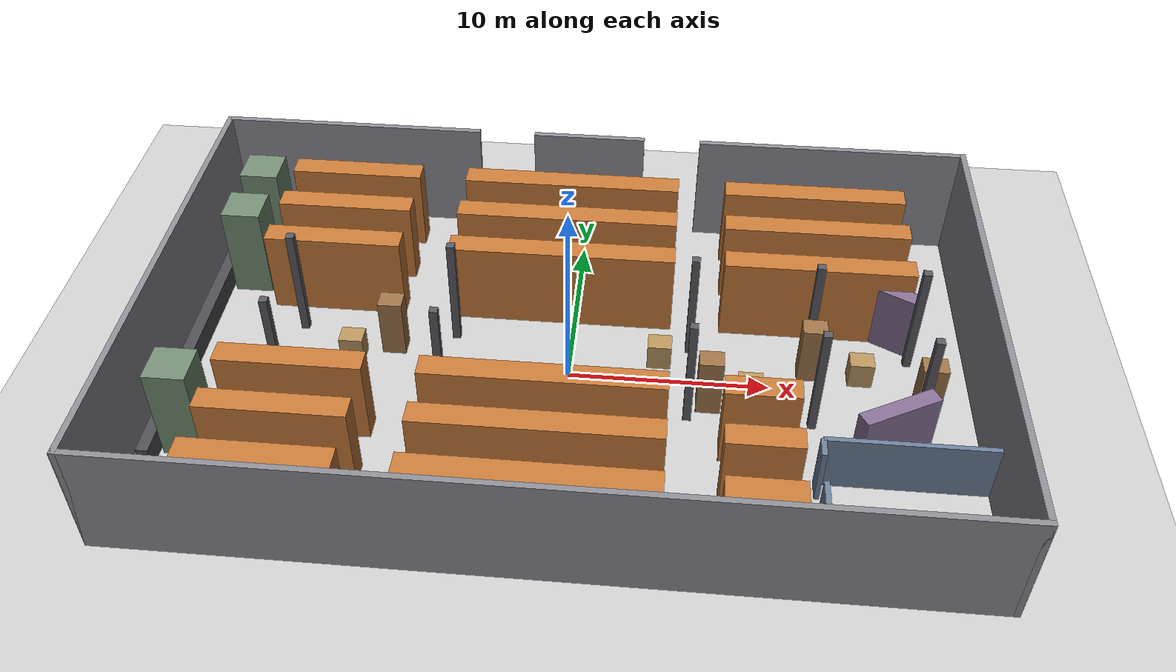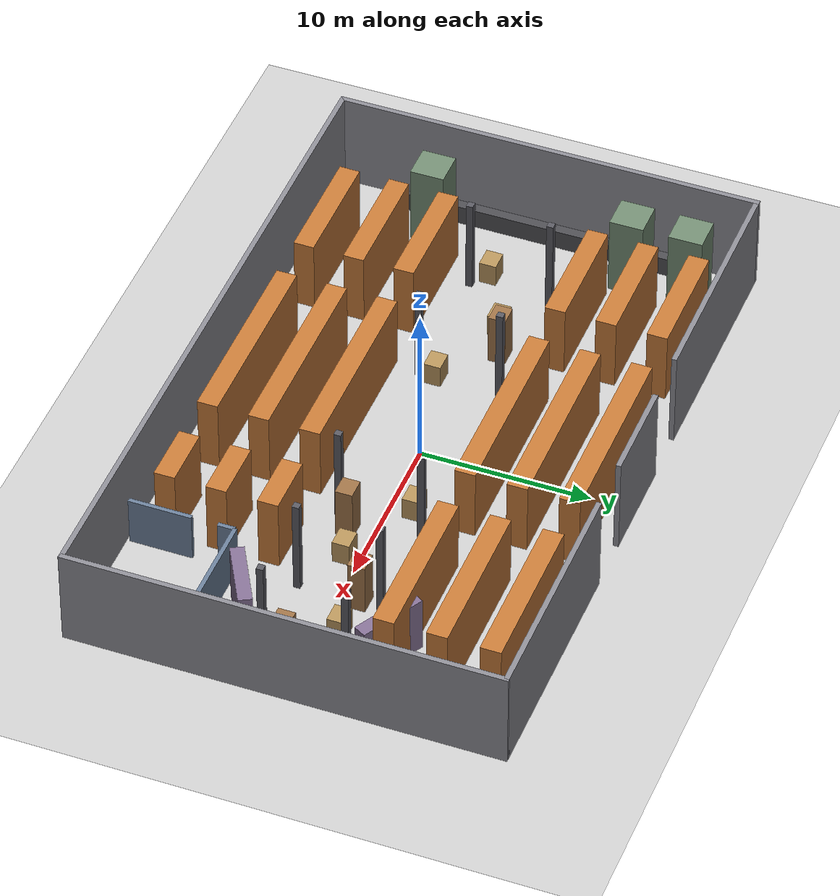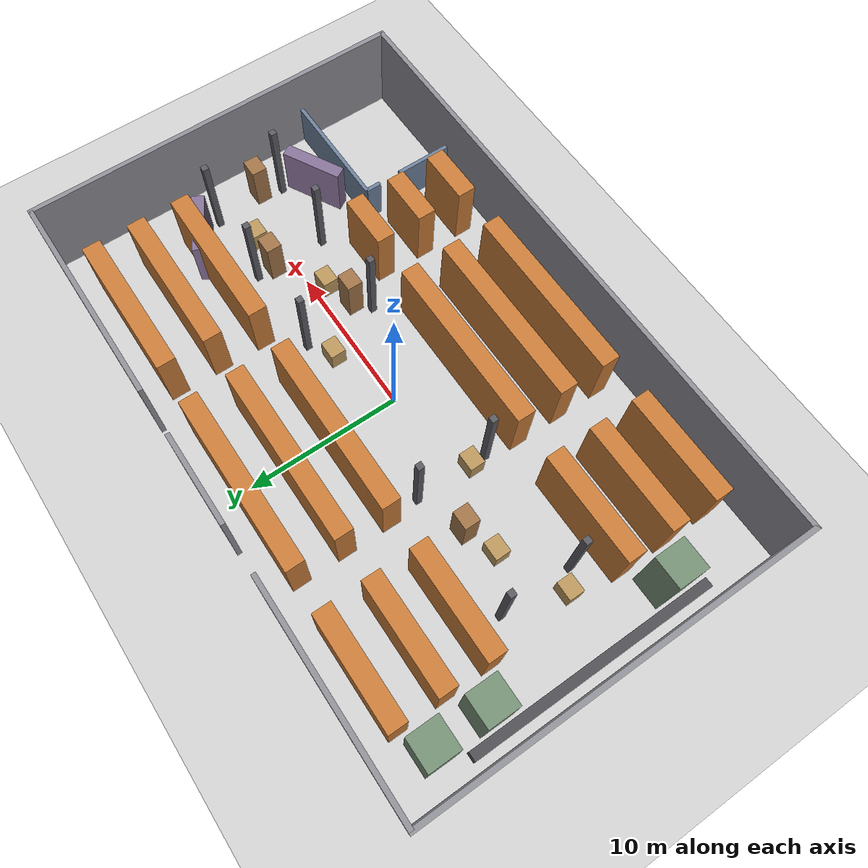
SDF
<?xml version="1.0" encoding="UTF-8"?>
<sdf version="1.9">
  <world name="garudanex_warehouse">
    <physics type="ode">
      <max_step_size>0.004</max_step_size>
      <real_time_factor>1.0</real_time_factor>
      <real_time_update_rate>250</real_time_update_rate>
    </physics>
    <gravity>0 0 -9.8</gravity>
    <magnetic_field>6e-06 2.3e-05 -4.2e-05</magnetic_field>
    <atmosphere type="adiabatic"/>
    <scene>
      <grid>false</grid>
      <ambient>0.4 0.4 0.4 1</ambient>
      <background>0.7 0.7 0.7 1</background>
      <shadows>true</shadows>
    </scene>
    <model name="ground_plane">
      <static>true</static>
      <link name="link">
        <collision name="collision">
          <geometry>
            <plane>
              <normal>0 0 1</normal>
              <size>1 1</size>
            </plane>
          </geometry>
          <surface>
            <friction>
              <ode/>
            </friction>
            <bounce/>
            <contact/>
          </surface>
        </collision>
        <visual name="visual">
          <geometry>
            <plane>
              <normal>0 0 1</normal>
              <size>500 500</size>
            </plane>
          </geometry>
          <material>
            <ambient>0.8 0.8 0.8 1</ambient>
            <diffuse>0.8 0.8 0.8 1</diffuse>
            <specular>0.8 0.8 0.8 1</specular>
          </material>
        </visual>
        <pose>0 0 0 0 -0 0</pose>
        <inertial>
          <pose>0 0 0 0 -0 0</pose>
          <mass>1</mass>
          <inertia>
            <ixx>1</ixx>
            <ixy>0</ixy>
            <ixz>0</ixz>
            <iyy>1</iyy>
            <iyz>0</iyz>
            <izz>1</izz>
          </inertia>
        </inertial>
        <enable_wind>false</enable_wind>
      </link>
      <pose>0 0 0 0 -0 0</pose>
      <self_collide>false</self_collide>
    </model>
    <light name="sunUTC" type="directional">
      <pose>0 0 500 0 -0 0</pose>
      <cast_shadows>true</cast_shadows>
      <intensity>1</intensity>
      <direction>0.001 0.625 -0.78</direction>
      <diffuse>0.904 0.904 0.904 1</diffuse>
      <specular>0.271 0.271 0.271 1</specular>
      <attenuation>
        <range>2000</range>
        <linear>0</linear>
        <constant>1</constant>
        <quadratic>0</quadratic>
      </attenuation>
      <spot>
        <inner_angle>0</inner_angle>
        <outer_angle>0</outer_angle>
        <falloff>0</falloff>
      </spot>
    </light>
    <spherical_coordinates>
      <surface_model>EARTH_WGS84</surface_model>
      <world_frame_orientation>ENU</world_frame_orientation>
      <latitude_deg>47.397971057728974</latitude_deg>
      <longitude_deg> 8.546163739800146</longitude_deg>
      <elevation>0</elevation>
    </spherical_coordinates>

    <model name="shell">
    <static>true</static>
    <link name="wall_south">
      <pose>0.0000 -12.5000 3.0000 0 0 0.0000</pose>
      <collision name="collision">
        <geometry><box><size>40.3000 0.3000 6.0000</size></box></geometry>
      </collision>
      <visual name="visual">
        <geometry><box><size>40.3000 0.3000 6.0000</size></box></geometry>
        <material>
          <ambient>0.55 0.55 0.58 1</ambient>
          <diffuse>0.55 0.55 0.58 1</diffuse>
        </material>
      </visual>
    </link>
    <link name="wall_east">
      <pose>20.0000 0.0000 3.0000 0 0 0.0000</pose>
      <collision name="collision">
        <geometry><box><size>0.3000 25.3000 6.0000</size></box></geometry>
      </collision>
      <visual name="visual">
        <geometry><box><size>0.3000 25.3000 6.0000</size></box></geometry>
        <material>
          <ambient>0.55 0.55 0.58 1</ambient>
          <diffuse>0.55 0.55 0.58 1</diffuse>
        </material>
      </visual>
    </link>
    <link name="wall_west">
      <pose>-20.0000 0.0000 3.0000 0 0 0.0000</pose>
      <collision name="collision">
        <geometry><box><size>0.3000 25.3000 6.0000</size></box></geometry>
      </collision>
      <visual name="visual">
        <geometry><box><size>0.3000 25.3000 6.0000</size></box></geometry>
        <material>
          <ambient>0.55 0.55 0.58 1</ambient>
          <diffuse>0.55 0.55 0.58 1</diffuse>
        </material>
      </visual>
    </link>
    <link name="wall_north_0">
      <pose>-13.0000 12.5000 3.0000 0 0 0.0000</pose>
      <collision name="collision">
        <geometry><box><size>14.0000 0.3000 6.0000</size></box></geometry>
      </collision>
      <visual name="visual">
        <geometry><box><size>14.0000 0.3000 6.0000</size></box></geometry>
        <material>
          <ambient>0.55 0.55 0.58 1</ambient>
          <diffuse>0.55 0.55 0.58 1</diffuse>
        </material>
      </visual>
    </link>
    <link name="wall_north_1">
      <pose>0.0000 12.5000 3.0000 0 0 0.0000</pose>
      <collision name="collision">
        <geometry><box><size>6.0000 0.3000 6.0000</size></box></geometry>
      </collision>
      <visual name="visual">
        <geometry><box><size>6.0000 0.3000 6.0000</size></box></geometry>
        <material>
          <ambient>0.55 0.55 0.58 1</ambient>
          <diffuse>0.55 0.55 0.58 1</diffuse>
        </material>
      </visual>
    </link>
    <link name="wall_north_2">
      <pose>13.0000 12.5000 3.0000 0 0 0.0000</pose>
      <collision name="collision">
        <geometry><box><size>14.0000 0.3000 6.0000</size></box></geometry>
      </collision>
      <visual name="visual">
        <geometry><box><size>14.0000 0.3000 6.0000</size></box></geometry>
        <material>
          <ambient>0.55 0.55 0.58 1</ambient>
          <diffuse>0.55 0.55 0.58 1</diffuse>
        </material>
      </visual>
    </link>
    </model>

    <model name="rack_row_0">
    <static>true</static>
    <link name="rack_0_0">
      <pose>-12.5000 4.5000 2.2500 0 0 0.0000</pose>
      <collision name="collision">
        <geometry><box><size>7.0000 1.2000 4.5000</size></box></geometry>
      </collision>
      <visual name="visual">
        <geometry><box><size>7.0000 1.2000 4.5000</size></box></geometry>
        <material>
          <ambient>0.78 0.48 0.22 1</ambient>
          <diffuse>0.78 0.48 0.22 1</diffuse>
        </material>
      </visual>
    </link>
    <link name="rack_0_1">
      <pose>-0.7500 4.5000 2.2500 0 0 0.0000</pose>
      <collision name="collision">
        <geometry><box><size>11.5000 1.2000 4.5000</size></box></geometry>
      </collision>
      <visual name="visual">
        <geometry><box><size>11.5000 1.2000 4.5000</size></box></geometry>
        <material>
          <ambient>0.78 0.48 0.22 1</ambient>
          <diffuse>0.78 0.48 0.22 1</diffuse>
        </material>
      </visual>
    </link>
    <link name="rack_0_2">
      <pose>12.2500 4.5000 2.2500 0 0 0.0000</pose>
      <collision name="collision">
        <geometry><box><size>9.5000 1.2000 4.5000</size></box></geometry>
      </collision>
      <visual name="visual">
        <geometry><box><size>9.5000 1.2000 4.5000</size></box></geometry>
        <material>
          <ambient>0.78 0.48 0.22 1</ambient>
          <diffuse>0.78 0.48 0.22 1</diffuse>
        </material>
      </visual>
    </link>
    </model>

    <model name="rack_row_1">
    <static>true</static>
    <link name="rack_1_0">
      <pose>-12.5000 7.5000 2.2500 0 0 0.0000</pose>
      <collision name="collision">
        <geometry><box><size>7.0000 1.2000 4.5000</size></box></geometry>
      </collision>
      <visual name="visual">
        <geometry><box><size>7.0000 1.2000 4.5000</size></box></geometry>
        <material>
          <ambient>0.78 0.48 0.22 1</ambient>
          <diffuse>0.78 0.48 0.22 1</diffuse>
        </material>
      </visual>
    </link>
    <link name="rack_1_1">
      <pose>-0.7500 7.5000 2.2500 0 0 0.0000</pose>
      <collision name="collision">
        <geometry><box><size>11.5000 1.2000 4.5000</size></box></geometry>
      </collision>
      <visual name="visual">
        <geometry><box><size>11.5000 1.2000 4.5000</size></box></geometry>
        <material>
          <ambient>0.78 0.48 0.22 1</ambient>
          <diffuse>0.78 0.48 0.22 1</diffuse>
        </material>
      </visual>
    </link>
    <link name="rack_1_2">
      <pose>12.2500 7.5000 2.2500 0 0 0.0000</pose>
      <collision name="collision">
        <geometry><box><size>9.5000 1.2000 4.5000</size></box></geometry>
      </collision>
      <visual name="visual">
        <geometry><box><size>9.5000 1.2000 4.5000</size></box></geometry>
        <material>
          <ambient>0.78 0.48 0.22 1</ambient>
          <diffuse>0.78 0.48 0.22 1</diffuse>
        </material>
      </visual>
    </link>
    </model>

    <model name="rack_row_2">
    <static>true</static>
    <link name="rack_2_0">
      <pose>-12.5000 10.5000 2.2500 0 0 0.0000</pose>
      <collision name="collision">
        <geometry><box><size>7.0000 1.2000 4.5000</size></box></geometry>
      </collision>
      <visual name="visual">
        <geometry><box><size>7.0000 1.2000 4.5000</size></box></geometry>
        <material>
          <ambient>0.78 0.48 0.22 1</ambient>
          <diffuse>0.78 0.48 0.22 1</diffuse>
        </material>
      </visual>
    </link>
    <link name="rack_2_1">
      <pose>-0.7500 10.5000 2.2500 0 0 0.0000</pose>
      <collision name="collision">
        <geometry><box><size>11.5000 1.2000 4.5000</size></box></geometry>
      </collision>
      <visual name="visual">
        <geometry><box><size>11.5000 1.2000 4.5000</size></box></geometry>
        <material>
          <ambient>0.78 0.48 0.22 1</ambient>
          <diffuse>0.78 0.48 0.22 1</diffuse>
        </material>
      </visual>
    </link>
    <link name="rack_2_2">
      <pose>12.2500 10.5000 2.2500 0 0 0.0000</pose>
      <collision name="collision">
        <geometry><box><size>9.5000 1.2000 4.5000</size></box></geometry>
      </collision>
      <visual name="visual">
        <geometry><box><size>9.5000 1.2000 4.5000</size></box></geometry>
        <material>
          <ambient>0.78 0.48 0.22 1</ambient>
          <diffuse>0.78 0.48 0.22 1</diffuse>
        </material>
      </visual>
    </link>
    </model>

    <model name="rack_row_3">
    <static>true</static>
    <link name="rack_3_0">
      <pose>-12.5000 -4.5000 2.2500 0 0 0.0000</pose>
      <collision name="collision">
        <geometry><box><size>7.0000 1.2000 4.5000</size></box></geometry>
      </collision>
      <visual name="visual">
        <geometry><box><size>7.0000 1.2000 4.5000</size></box></geometry>
        <material>
          <ambient>0.78 0.48 0.22 1</ambient>
          <diffuse>0.78 0.48 0.22 1</diffuse>
        </material>
      </visual>
    </link>
    <link name="rack_3_1">
      <pose>-0.7500 -4.5000 2.2500 0 0 0.0000</pose>
      <collision name="collision">
        <geometry><box><size>11.5000 1.2000 4.5000</size></box></geometry>
      </collision>
      <visual name="visual">
        <geometry><box><size>11.5000 1.2000 4.5000</size></box></geometry>
        <material>
          <ambient>0.78 0.48 0.22 1</ambient>
          <diffuse>0.78 0.48 0.22 1</diffuse>
        </material>
      </visual>
    </link>
    <link name="rack_3_2">
      <pose>9.2500 -4.5000 2.2500 0 0 0.0000</pose>
      <collision name="collision">
        <geometry><box><size>3.5000 1.2000 4.5000</size></box></geometry>
      </collision>
      <visual name="visual">
        <geometry><box><size>3.5000 1.2000 4.5000</size></box></geometry>
        <material>
          <ambient>0.78 0.48 0.22 1</ambient>
          <diffuse>0.78 0.48 0.22 1</diffuse>
        </material>
      </visual>
    </link>
    </model>

    <model name="rack_row_4">
    <static>true</static>
    <link name="rack_4_0">
      <pose>-12.5000 -7.5000 2.2500 0 0 0.0000</pose>
      <collision name="collision">
        <geometry><box><size>7.0000 1.2000 4.5000</size></box></geometry>
      </collision>
      <visual name="visual">
        <geometry><box><size>7.0000 1.2000 4.5000</size></box></geometry>
        <material>
          <ambient>0.78 0.48 0.22 1</ambient>
          <diffuse>0.78 0.48 0.22 1</diffuse>
        </material>
      </visual>
    </link>
    <link name="rack_4_1">
      <pose>-0.7500 -7.5000 2.2500 0 0 0.0000</pose>
      <collision name="collision">
        <geometry><box><size>11.5000 1.2000 4.5000</size></box></geometry>
      </collision>
      <visual name="visual">
        <geometry><box><size>11.5000 1.2000 4.5000</size></box></geometry>
        <material>
          <ambient>0.78 0.48 0.22 1</ambient>
          <diffuse>0.78 0.48 0.22 1</diffuse>
        </material>
      </visual>
    </link>
    <link name="rack_4_2">
      <pose>9.2500 -7.5000 2.2500 0 0 0.0000</pose>
      <collision name="collision">
        <geometry><box><size>3.5000 1.2000 4.5000</size></box></geometry>
      </collision>
      <visual name="visual">
        <geometry><box><size>3.5000 1.2000 4.5000</size></box></geometry>
        <material>
          <ambient>0.78 0.48 0.22 1</ambient>
          <diffuse>0.78 0.48 0.22 1</diffuse>
        </material>
      </visual>
    </link>
    </model>

    <model name="rack_row_5">
    <static>true</static>
    <link name="rack_5_0">
      <pose>-12.5000 -10.5000 2.2500 0 0 0.0000</pose>
      <collision name="collision">
        <geometry><box><size>7.0000 1.2000 4.5000</size></box></geometry>
      </collision>
      <visual name="visual">
        <geometry><box><size>7.0000 1.2000 4.5000</size></box></geometry>
        <material>
          <ambient>0.78 0.48 0.22 1</ambient>
          <diffuse>0.78 0.48 0.22 1</diffuse>
        </material>
      </visual>
    </link>
    <link name="rack_5_1">
      <pose>-0.7500 -10.5000 2.2500 0 0 0.0000</pose>
      <collision name="collision">
        <geometry><box><size>11.5000 1.2000 4.5000</size></box></geometry>
      </collision>
      <visual name="visual">
        <geometry><box><size>11.5000 1.2000 4.5000</size></box></geometry>
        <material>
          <ambient>0.78 0.48 0.22 1</ambient>
          <diffuse>0.78 0.48 0.22 1</diffuse>
        </material>
      </visual>
    </link>
    <link name="rack_5_2">
      <pose>9.2500 -10.5000 2.2500 0 0 0.0000</pose>
      <collision name="collision">
        <geometry><box><size>3.5000 1.2000 4.5000</size></box></geometry>
      </collision>
      <visual name="visual">
        <geometry><box><size>3.5000 1.2000 4.5000</size></box></geometry>
        <material>
          <ambient>0.78 0.48 0.22 1</ambient>
          <diffuse>0.78 0.48 0.22 1</diffuse>
        </material>
      </visual>
    </link>
    </model>

    <model name="columns">
    <static>true</static>
    <link name="col_0_0">
      <pose>-14.0000 -2.4000 3.0000 0 0 0.0000</pose>
      <collision name="collision">
        <geometry><box><size>0.4000 0.4000 6.0000</size></box></geometry>
      </collision>
      <visual name="visual">
        <geometry><box><size>0.4000 0.4000 6.0000</size></box></geometry>
        <material>
          <ambient>0.35 0.35 0.38 1</ambient>
          <diffuse>0.35 0.35 0.38 1</diffuse>
        </material>
      </visual>
    </link>
    <link name="col_0_1">
      <pose>-14.0000 2.4000 3.0000 0 0 0.0000</pose>
      <collision name="collision">
        <geometry><box><size>0.4000 0.4000 6.0000</size></box></geometry>
      </collision>
      <visual name="visual">
        <geometry><box><size>0.4000 0.4000 6.0000</size></box></geometry>
        <material>
          <ambient>0.35 0.35 0.38 1</ambient>
          <diffuse>0.35 0.35 0.38 1</diffuse>
        </material>
      </visual>
    </link>
    <link name="col_1_0">
      <pose>-6.0000 -2.4000 3.0000 0 0 0.0000</pose>
      <collision name="collision">
        <geometry><box><size>0.4000 0.4000 6.0000</size></box></geometry>
      </collision>
      <visual name="visual">
        <geometry><box><size>0.4000 0.4000 6.0000</size></box></geometry>
        <material>
          <ambient>0.35 0.35 0.38 1</ambient>
          <diffuse>0.35 0.35 0.38 1</diffuse>
        </material>
      </visual>
    </link>
    <link name="col_1_1">
      <pose>-6.0000 2.4000 3.0000 0 0 0.0000</pose>
      <collision name="collision">
        <geometry><box><size>0.4000 0.4000 6.0000</size></box></geometry>
      </collision>
      <visual name="visual">
        <geometry><box><size>0.4000 0.4000 6.0000</size></box></geometry>
        <material>
          <ambient>0.35 0.35 0.38 1</ambient>
          <diffuse>0.35 0.35 0.38 1</diffuse>
        </material>
      </visual>
    </link>
    <link name="col_2_0">
      <pose>6.0000 -2.4000 3.0000 0 0 0.0000</pose>
      <collision name="collision">
        <geometry><box><size>0.4000 0.4000 6.0000</size></box></geometry>
      </collision>
      <visual name="visual">
        <geometry><box><size>0.4000 0.4000 6.0000</size></box></geometry>
        <material>
          <ambient>0.35 0.35 0.38 1</ambient>
          <diffuse>0.35 0.35 0.38 1</diffuse>
        </material>
      </visual>
    </link>
    <link name="col_2_1">
      <pose>6.0000 2.4000 3.0000 0 0 0.0000</pose>
      <collision name="collision">
        <geometry><box><size>0.4000 0.4000 6.0000</size></box></geometry>
      </collision>
      <visual name="visual">
        <geometry><box><size>0.4000 0.4000 6.0000</size></box></geometry>
        <material>
          <ambient>0.35 0.35 0.38 1</ambient>
          <diffuse>0.35 0.35 0.38 1</diffuse>
        </material>
      </visual>
    </link>
    <link name="col_3_0">
      <pose>12.0000 -2.4000 3.0000 0 0 0.0000</pose>
      <collision name="collision">
        <geometry><box><size>0.4000 0.4000 6.0000</size></box></geometry>
      </collision>
      <visual name="visual">
        <geometry><box><size>0.4000 0.4000 6.0000</size></box></geometry>
        <material>
          <ambient>0.35 0.35 0.38 1</ambient>
          <diffuse>0.35 0.35 0.38 1</diffuse>
        </material>
      </visual>
    </link>
    <link name="col_3_1">
      <pose>12.0000 2.4000 3.0000 0 0 0.0000</pose>
      <collision name="collision">
        <geometry><box><size>0.4000 0.4000 6.0000</size></box></geometry>
      </collision>
      <visual name="visual">
        <geometry><box><size>0.4000 0.4000 6.0000</size></box></geometry>
        <material>
          <ambient>0.35 0.35 0.38 1</ambient>
          <diffuse>0.35 0.35 0.38 1</diffuse>
        </material>
      </visual>
    </link>
    <link name="col_4_0">
      <pose>17.0000 -2.4000 3.0000 0 0 0.0000</pose>
      <collision name="collision">
        <geometry><box><size>0.4000 0.4000 6.0000</size></box></geometry>
      </collision>
      <visual name="visual">
        <geometry><box><size>0.4000 0.4000 6.0000</size></box></geometry>
        <material>
          <ambient>0.35 0.35 0.38 1</ambient>
          <diffuse>0.35 0.35 0.38 1</diffuse>
        </material>
      </visual>
    </link>
    <link name="col_4_1">
      <pose>17.0000 2.4000 3.0000 0 0 0.0000</pose>
      <collision name="collision">
        <geometry><box><size>0.4000 0.4000 6.0000</size></box></geometry>
      </collision>
      <visual name="visual">
        <geometry><box><size>0.4000 0.4000 6.0000</size></box></geometry>
        <material>
          <ambient>0.35 0.35 0.38 1</ambient>
          <diffuse>0.35 0.35 0.38 1</diffuse>
        </material>
      </visual>
    </link>
    </model>

    <model name="office">
    <static>true</static>
    <link name="office_north">
      <pose>15.9250 -6.0000 1.5000 0 0 0.0000</pose>
      <collision name="collision">
        <geometry><box><size>7.8500 0.2500 3.0000</size></box></geometry>
      </collision>
      <visual name="visual">
        <geometry><box><size>7.8500 0.2500 3.0000</size></box></geometry>
        <material>
          <ambient>0.42 0.50 0.60 1</ambient>
          <diffuse>0.42 0.50 0.60 1</diffuse>
        </material>
      </visual>
    </link>
    <link name="office_west_a">
      <pose>12.0000 -10.3500 1.5000 0 0 0.0000</pose>
      <collision name="collision">
        <geometry><box><size>0.2500 3.7000 3.0000</size></box></geometry>
      </collision>
      <visual name="visual">
        <geometry><box><size>0.2500 3.7000 3.0000</size></box></geometry>
        <material>
          <ambient>0.42 0.50 0.60 1</ambient>
          <diffuse>0.42 0.50 0.60 1</diffuse>
        </material>
      </visual>
    </link>
    <link name="office_west_b">
      <pose>12.0000 -6.5000 1.5000 0 0 0.0000</pose>
      <collision name="collision">
        <geometry><box><size>0.2500 1.0000 3.0000</size></box></geometry>
      </collision>
      <visual name="visual">
        <geometry><box><size>0.2500 1.0000 3.0000</size></box></geometry>
        <material>
          <ambient>0.42 0.50 0.60 1</ambient>
          <diffuse>0.42 0.50 0.60 1</diffuse>
        </material>
      </visual>
    </link>
    </model>

    <model name="conveyor">
    <static>true</static>
    <link name="conveyor">
      <pose>-19.0000 0.0000 0.6000 0 0 0.0000</pose>
      <collision name="collision">
        <geometry><box><size>0.6000 16.0000 1.2000</size></box></geometry>
      </collision>
      <visual name="visual">
        <geometry><box><size>0.6000 16.0000 1.2000</size></box></geometry>
        <material>
          <ambient>0.30 0.30 0.32 1</ambient>
          <diffuse>0.30 0.30 0.32 1</diffuse>
        </material>
      </visual>
    </link>
    </model>

    <model name="pallets_low">
    <static>true</static>
    <link name="pallet_low_0">
      <pose>-11.0000 0.5000 0.7000 0 0 0.0000</pose>
      <collision name="collision">
        <geometry><box><size>1.2000 1.0000 1.4000</size></box></geometry>
      </collision>
      <visual name="visual">
        <geometry><box><size>1.2000 1.0000 1.4000</size></box></geometry>
        <material>
          <ambient>0.72 0.58 0.36 1</ambient>
          <diffuse>0.72 0.58 0.36 1</diffuse>
        </material>
      </visual>
    </link>
    <link name="pallet_low_1">
      <pose>-6.0000 -1.4000 0.7000 0 0 0.0000</pose>
      <collision name="collision">
        <geometry><box><size>1.2000 1.0000 1.4000</size></box></geometry>
      </collision>
      <visual name="visual">
        <geometry><box><size>1.2000 1.0000 1.4000</size></box></geometry>
        <material>
          <ambient>0.72 0.58 0.36 1</ambient>
          <diffuse>0.72 0.58 0.36 1</diffuse>
        </material>
      </visual>
    </link>
    <link name="pallet_low_2">
      <pose>4.5000 1.4000 0.7000 0 0 0.0000</pose>
      <collision name="collision">
        <geometry><box><size>1.2000 1.0000 1.4000</size></box></geometry>
      </collision>
      <visual name="visual">
        <geometry><box><size>1.2000 1.0000 1.4000</size></box></geometry>
        <material>
          <ambient>0.72 0.58 0.36 1</ambient>
          <diffuse>0.72 0.58 0.36 1</diffuse>
        </material>
      </visual>
    </link>
    <link name="pallet_low_3">
      <pose>9.0000 -0.9000 0.7000 0 0 0.0000</pose>
      <collision name="collision">
        <geometry><box><size>1.2000 1.0000 1.4000</size></box></geometry>
      </collision>
      <visual name="visual">
        <geometry><box><size>1.2000 1.0000 1.4000</size></box></geometry>
        <material>
          <ambient>0.72 0.58 0.36 1</ambient>
          <diffuse>0.72 0.58 0.36 1</diffuse>
        </material>
      </visual>
    </link>
    <link name="pallet_low_4">
      <pose>14.5000 1.0000 0.7000 0 0 0.0000</pose>
      <collision name="collision">
        <geometry><box><size>1.2000 1.0000 1.4000</size></box></geometry>
      </collision>
      <visual name="visual">
        <geometry><box><size>1.2000 1.0000 1.4000</size></box></geometry>
        <material>
          <ambient>0.72 0.58 0.36 1</ambient>
          <diffuse>0.72 0.58 0.36 1</diffuse>
        </material>
      </visual>
    </link>
    <link name="pallet_low_5">
      <pose>-15.0000 -1.5000 0.7000 0 0 0.0000</pose>
      <collision name="collision">
        <geometry><box><size>1.2000 1.0000 1.4000</size></box></geometry>
      </collision>
      <visual name="visual">
        <geometry><box><size>1.2000 1.0000 1.4000</size></box></geometry>
        <material>
          <ambient>0.72 0.58 0.36 1</ambient>
          <diffuse>0.72 0.58 0.36 1</diffuse>
        </material>
      </visual>
    </link>
    </model>

    <model name="pallets_high">
    <static>true</static>
    <link name="pallet_high_0">
      <pose>-9.0000 1.3000 1.6000 0 0 0.0000</pose>
      <collision name="collision">
        <geometry><box><size>1.2000 1.0000 3.2000</size></box></geometry>
      </collision>
      <visual name="visual">
        <geometry><box><size>1.2000 1.0000 3.2000</size></box></geometry>
        <material>
          <ambient>0.62 0.45 0.28 1</ambient>
          <diffuse>0.62 0.45 0.28 1</diffuse>
        </material>
      </visual>
    </link>
    <link name="pallet_high_1">
      <pose>7.0000 -1.5000 1.6000 0 0 0.0000</pose>
      <collision name="collision">
        <geometry><box><size>1.2000 1.0000 3.2000</size></box></geometry>
      </collision>
      <visual name="visual">
        <geometry><box><size>1.2000 1.0000 3.2000</size></box></geometry>
        <material>
          <ambient>0.62 0.45 0.28 1</ambient>
          <diffuse>0.62 0.45 0.28 1</diffuse>
        </material>
      </visual>
    </link>
    <link name="pallet_high_2">
      <pose>12.0000 1.2000 1.6000 0 0 0.0000</pose>
      <collision name="collision">
        <geometry><box><size>1.2000 1.0000 3.2000</size></box></geometry>
      </collision>
      <visual name="visual">
        <geometry><box><size>1.2000 1.0000 3.2000</size></box></geometry>
        <material>
          <ambient>0.62 0.45 0.28 1</ambient>
          <diffuse>0.62 0.45 0.28 1</diffuse>
        </material>
      </visual>
    </link>
    <link name="pallet_high_3">
      <pose>17.5000 -1.0000 1.6000 0 0 0.0000</pose>
      <collision name="collision">
        <geometry><box><size>1.2000 1.0000 3.2000</size></box></geometry>
      </collision>
      <visual name="visual">
        <geometry><box><size>1.2000 1.0000 3.2000</size></box></geometry>
        <material>
          <ambient>0.62 0.45 0.28 1</ambient>
          <diffuse>0.62 0.45 0.28 1</diffuse>
        </material>
      </visual>
    </link>
    </model>

    <model name="crates">
    <static>true</static>
    <link name="crate_0">
      <pose>-17.5000 6.0000 2.5000 0 0 0.0000</pose>
      <collision name="collision">
        <geometry><box><size>2.0000 2.0000 5.0000</size></box></geometry>
      </collision>
      <visual name="visual">
        <geometry><box><size>2.0000 2.0000 5.0000</size></box></geometry>
        <material>
          <ambient>0.45 0.55 0.45 1</ambient>
          <diffuse>0.45 0.55 0.45 1</diffuse>
        </material>
      </visual>
    </link>
    <link name="crate_1">
      <pose>-17.5000 9.5000 2.5000 0 0 0.0000</pose>
      <collision name="collision">
        <geometry><box><size>2.0000 2.0000 5.0000</size></box></geometry>
      </collision>
      <visual name="visual">
        <geometry><box><size>2.0000 2.0000 5.0000</size></box></geometry>
        <material>
          <ambient>0.45 0.55 0.45 1</ambient>
          <diffuse>0.45 0.55 0.45 1</diffuse>
        </material>
      </visual>
    </link>
    <link name="crate_2">
      <pose>-17.5000 -6.0000 2.5000 0 0 0.0000</pose>
      <collision name="collision">
        <geometry><box><size>2.0000 2.0000 5.0000</size></box></geometry>
      </collision>
      <visual name="visual">
        <geometry><box><size>2.0000 2.0000 5.0000</size></box></geometry>
        <material>
          <ambient>0.45 0.55 0.45 1</ambient>
          <diffuse>0.45 0.55 0.45 1</diffuse>
        </material>
      </visual>
    </link>
    </model>

    <model name="misc">
    <static>true</static>
    <link name="diag_a">
      <pose>15.5000 -4.2000 1.7500 0 0 0.5000</pose>
      <collision name="collision">
        <geometry><box><size>4.0000 0.8000 3.5000</size></box></geometry>
      </collision>
      <visual name="visual">
        <geometry><box><size>4.0000 0.8000 3.5000</size></box></geometry>
        <material>
          <ambient>0.52 0.44 0.58 1</ambient>
          <diffuse>0.52 0.44 0.58 1</diffuse>
        </material>
      </visual>
    </link>
    <link name="diag_b">
      <pose>15.5000 4.2000 1.7500 0 0 -0.5000</pose>
      <collision name="collision">
        <geometry><box><size>4.0000 0.8000 3.5000</size></box></geometry>
      </collision>
      <visual name="visual">
        <geometry><box><size>4.0000 0.8000 3.5000</size></box></geometry>
        <material>
          <ambient>0.52 0.44 0.58 1</ambient>
          <diffuse>0.52 0.44 0.58 1</diffuse>
        </material>
      </visual>
    </link>
    </model>
</world>
</sdf>
